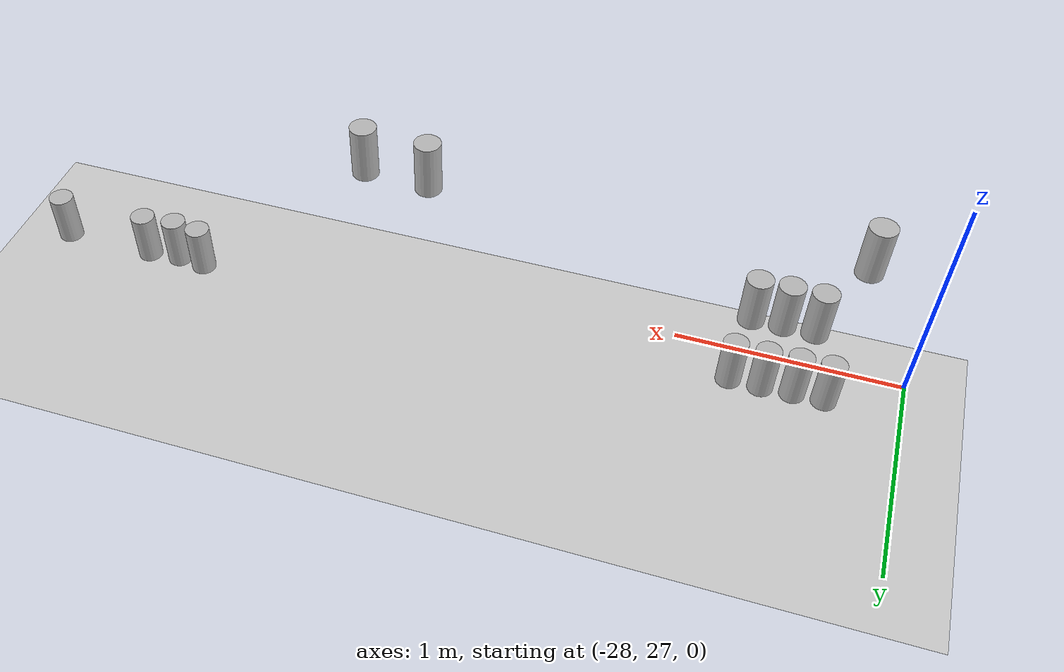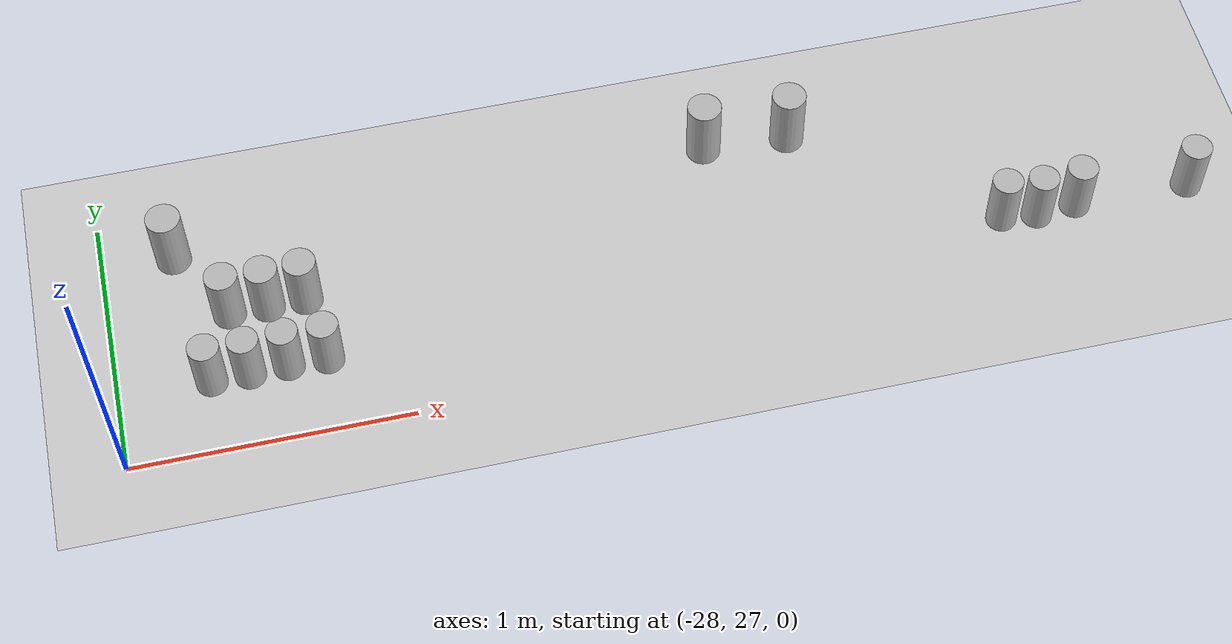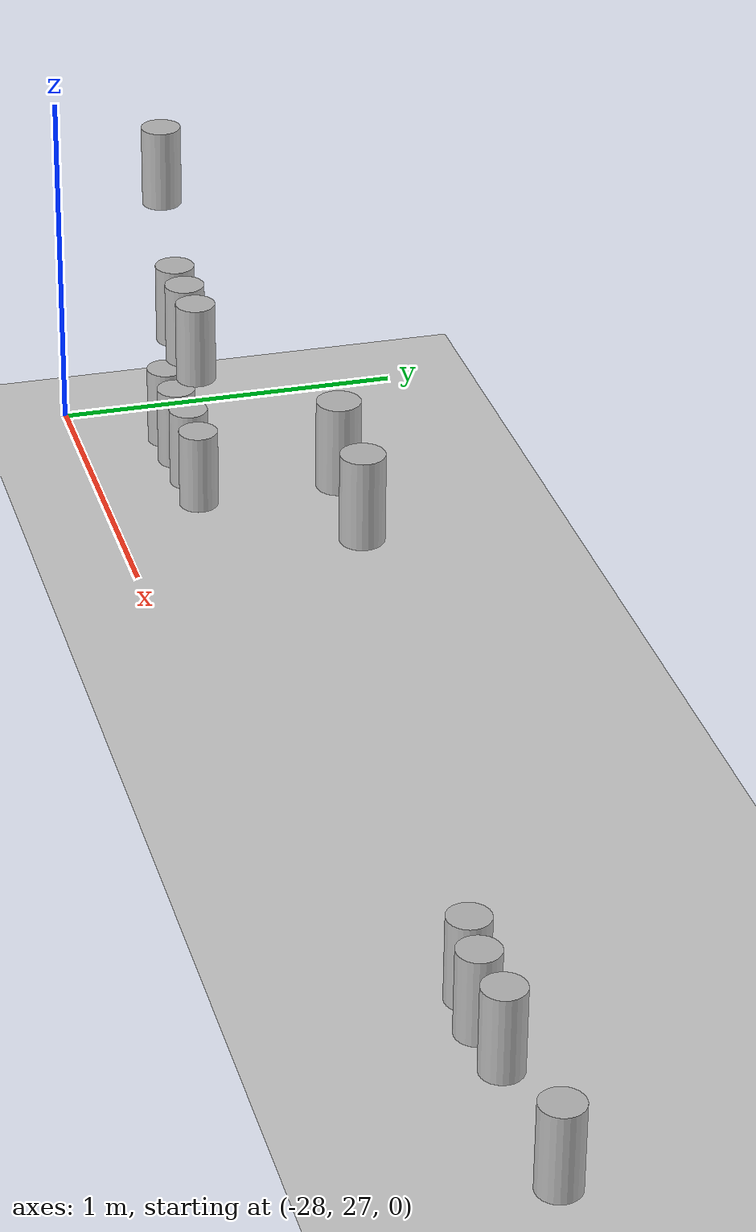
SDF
<sdf version="1.7">
 <world name="default">
  <model name="ground_plane">
   <static>1</static>
   <link name="link">
    <collision name="collision">
     <geometry><plane><normal>0 0 1</normal><size>100 100</size></plane></geometry>
     <surface>
      <contact><collide_bitmask>65535</collide_bitmask></contact>
      <friction><ode><mu>100</mu><mu2>50</mu2></ode></friction>
     </surface>
    </collision>
    <visual name="visual">
     <cast_shadows>0</cast_shadows>
     <geometry><plane><normal>0 0 1</normal><size>100 100</size></plane></geometry>
     <material>
      <script><uri>file://media/materials/scripts/gazebo.material</uri><name>Gazebo/Grey</name></script>
     </material>
    </visual>
   </link>
  </model>
  <model name="beer_clone_5">
   <link name="link">
    <pose>0 0 0.115 0 -0 0</pose>
    <inertial>
     <mass>0.39</mass>
     <inertia><ixx>0.00058</ixx><ixy>0</ixy><ixz>0</ixz><iyy>0.00058</iyy><iyz>0</iyz><izz>0.00019</izz></inertia>
    </inertial>
    <collision name="collision">
     <geometry><cylinder><radius>0.055</radius><length>0.23</length></cylinder></geometry>
    </collision>
    <visual name="visual">
     <geometry><cylinder><radius>0.055</radius><length>0.23</length></cylinder></geometry>
     <material>
      <script>
       <uri>model://beer/materials/scripts</uri>
       <uri>model://beer/materials/textures</uri>
       <name>Beer/Diffuse</name>
      </script>
     </material>
    </visual>
   </link>
   <pose>-27.2672 27.2387 0.060001 2e-05 1.4e-05 0.008863</pose>
  </model>
  <model name="beer_clone_6">
   <link name="link">
    <pose>0 0 0.115 0 -0 0</pose>
    <inertial>
     <mass>0.39</mass>
     <inertia><ixx>0.00058</ixx><ixy>0</ixy><ixz>0</ixz><iyy>0.00058</iyy><iyz>0</iyz><izz>0.00019</izz></inertia>
    </inertial>
    <collision name="collision">
     <geometry><cylinder><radius>0.055</radius><length>0.23</length></cylinder></geometry>
    </collision>
    <visual name="visual">
     <geometry><cylinder><radius>0.055</radius><length>0.23</length></cylinder></geometry>
     <material>
      <script>
       <uri>model://beer/materials/scripts</uri>
       <uri>model://beer/materials/textures</uri>
       <name>Beer/Diffuse</name>
      </script>
     </material>
    </visual>
   </link>
   <pose>-27.4041 27.242 0.05999 1e-06 -2.7e-05 0.004942</pose>
  </model>
  <model name="beer_clone_7">
   <link name="link">
    <pose>0 0 0.115 0 -0 0</pose>
    <inertial>
     <mass>0.39</mass>
     <inertia><ixx>0.00058</ixx><ixy>0</ixy><ixz>0</ixz><iyy>0.00058</iyy><iyz>0</iyz><izz>0.00019</izz></inertia>
    </inertial>
    <collision name="collision">
     <geometry><cylinder><radius>0.055</radius><length>0.23</length></cylinder></geometry>
    </collision>
    <visual name="visual">
     <geometry><cylinder><radius>0.055</radius><length>0.23</length></cylinder></geometry>
     <material>
      <script>
       <uri>model://beer/materials/scripts</uri>
       <uri>model://beer/materials/textures</uri>
       <name>Beer/Diffuse</name>
      </script>
     </material>
    </visual>
   </link>
   <pose>-27.5383 27.2373 0.059989 1e-06 -2.8e-05 0.018419</pose>
  </model>
  <model name="beer_clone_8">
   <link name="link">
    <pose>0 0 0.115 0 -0 0</pose>
    <inertial>
     <mass>0.39</mass>
     <inertia><ixx>0.00058</ixx><ixy>0</ixy><ixz>0</ixz><iyy>0.00058</iyy><iyz>0</iyz><izz>0.00019</izz></inertia>
    </inertial>
    <collision name="collision">
     <geometry><cylinder><radius>0.055</radius><length>0.23</length></cylinder></geometry>
    </collision>
    <visual name="visual">
     <geometry><cylinder><radius>0.055</radius><length>0.23</length></cylinder></geometry>
     <material>
      <script>
       <uri>model://beer/materials/scripts</uri>
       <uri>model://beer/materials/textures</uri>
       <name>Beer/Diffuse</name>
      </script>
     </material>
    </visual>
   </link>
   <pose>-27.6708 27.2372 0.05999 1e-06 -2.7e-05 0.005374</pose>
  </model>
  <model name="beer_clone_9_clone_6">
   <link name="link">
    <pose>0 0 0.115 0 -0 0</pose>
    <inertial>
     <mass>0.39</mass>
     <inertia><ixx>0.00058</ixx><ixy>0</ixy><ixz>0</ixz><iyy>0.00058</iyy><iyz>0</iyz><izz>0.00019</izz></inertia>
    </inertial>
    <collision name="collision">
     <geometry><cylinder><radius>0.055</radius><length>0.23</length></cylinder></geometry>
    </collision>
    <visual name="visual">
     <geometry><cylinder><radius>0.055</radius><length>0.23</length></cylinder></geometry>
     <material>
      <script>
       <uri>model://beer/materials/scripts</uri>
       <uri>model://beer/materials/textures</uri>
       <name>Beer/Diffuse</name>
      </script>
     </material>
    </visual>
   </link>
   <pose>-27.2993 27.2422 0.440001 1.9e-05 1.4e-05 0.00655</pose>
  </model>
  <model name="beer_clone_9_clone_7">
   <link name="link">
    <pose>0 0 0.115 0 -0 0</pose>
    <inertial>
     <mass>0.39</mass>
     <inertia><ixx>0.00058</ixx><ixy>0</ixy><ixz>0</ixz><iyy>0.00058</iyy><iyz>0</iyz><izz>0.00019</izz></inertia>
    </inertial>
    <collision name="collision">
     <geometry><cylinder><radius>0.055</radius><length>0.23</length></cylinder></geometry>
    </collision>
    <visual name="visual">
     <geometry><cylinder><radius>0.055</radius><length>0.23</length></cylinder></geometry>
     <material>
      <script>
       <uri>model://beer/materials/scripts</uri>
       <uri>model://beer/materials/textures</uri>
       <name>Beer/Diffuse</name>
      </script>
     </material>
    </visual>
   </link>
   <pose>-27.4252 27.2408 0.440002 1e-06 -2.7e-05 0.005083</pose>
  </model>
  <model name="beer_clone_9_clone_8">
   <link name="link">
    <pose>0 0 0.115 0 -0 0</pose>
    <inertial>
     <mass>0.39</mass>
     <inertia><ixx>0.00058</ixx><ixy>0</ixy><ixz>0</ixz><iyy>0.00058</iyy><iyz>0</iyz><izz>0.00019</izz></inertia>
    </inertial>
    <collision name="collision">
     <geometry><cylinder><radius>0.055</radius><length>0.23</length></cylinder></geometry>
    </collision>
    <visual name="visual">
     <geometry><cylinder><radius>0.055</radius><length>0.23</length></cylinder></geometry>
     <material>
      <script>
       <uri>model://beer/materials/scripts</uri>
       <uri>model://beer/materials/textures</uri>
       <name>Beer/Diffuse</name>
      </script>
     </material>
    </visual>
   </link>
   <pose>-27.5543 27.2424 0.43999 1e-06 -2.6e-05 0.009171</pose>
  </model>
  <model name="beer_clone_9_clone_9">
   <link name="link">
    <pose>0 0 0.115 0 -0 0</pose>
    <inertial>
     <mass>0.39</mass>
     <inertia><ixx>0.00058</ixx><ixy>0</ixy><ixz>0</ixz><iyy>0.00058</iyy><iyz>0</iyz><izz>0.00019</izz></inertia>
    </inertial>
    <collision name="collision">
     <geometry><cylinder><radius>0.055</radius><length>0.23</length></cylinder></geometry>
    </collision>
    <visual name="visual">
     <geometry><cylinder><radius>0.055</radius><length>0.23</length></cylinder></geometry>
     <material>
      <script>
       <uri>model://beer/materials/scripts</uri>
       <uri>model://beer/materials/textures</uri>
       <name>Beer/Diffuse</name>
      </script>
     </material>
    </visual>
   </link>
   <pose>-27.6787 27.2361 0.80999 -1e-06 2.6e-05 0.006818</pose>
  </model>
  <model name="beer_clone_7_clone">
   <link name="link">
    <pose>0 0 0.115 0 -0 0</pose>
    <inertial>
     <mass>0.39</mass>
     <inertia><ixx>0.00058</ixx><ixy>0</ixy><ixz>0</ixz><iyy>0.00058</iyy><iyz>0</iyz><izz>0.00019</izz></inertia>
    </inertial>
    <collision name="collision">
     <geometry><cylinder><radius>0.055</radius><length>0.23</length></cylinder></geometry>
    </collision>
    <visual name="visual">
     <geometry><cylinder><radius>0.055</radius><length>0.23</length></cylinder></geometry>
     <material>
      <script>
       <uri>model://beer/materials/scripts</uri>
       <uri>model://beer/materials/textures</uri>
       <name>Beer/Diffuse</name>
      </script>
     </material>
    </visual>
   </link>
   <pose>-24.8263 27.2962 0.060002 1e-06 -2.7e-05 0.017249</pose>
  </model>
  <model name="beer_clone_7_clone_0">
   <link name="link">
    <pose>0 0 0.115 0 -0 0</pose>
    <inertial>
     <mass>0.39</mass>
     <inertia><ixx>0.00058</ixx><ixy>0</ixy><ixz>0</ixz><iyy>0.00058</iyy><iyz>0</iyz><izz>0.00019</izz></inertia>
    </inertial>
    <collision name="collision">
     <geometry><cylinder><radius>0.055</radius><length>0.23</length></cylinder></geometry>
    </collision>
    <visual name="visual">
     <geometry><cylinder><radius>0.055</radius><length>0.23</length></cylinder></geometry>
     <material>
      <script>
       <uri>model://beer/materials/scripts</uri>
       <uri>model://beer/materials/textures</uri>
       <name>Beer/Diffuse</name>
      </script>
     </material>
    </visual>
   </link>
   <pose>-24.6983 27.281 0.060002 2.9e-05 2e-06 0.01695</pose>
  </model>
  <model name="beer_clone_7_clone_1">
   <link name="link">
    <pose>0 0 0.115 0 -0 0</pose>
    <inertial>
     <mass>0.39</mass>
     <inertia><ixx>0.00058</ixx><ixy>0</ixy><ixz>0</ixz><iyy>0.00058</iyy><iyz>0</iyz><izz>0.00019</izz></inertia>
    </inertial>
    <collision name="collision">
     <geometry><cylinder><radius>0.055</radius><length>0.23</length></cylinder></geometry>
    </collision>
    <visual name="visual">
     <geometry><cylinder><radius>0.055</radius><length>0.23</length></cylinder></geometry>
     <material>
      <script>
       <uri>model://beer/materials/scripts</uri>
       <uri>model://beer/materials/textures</uri>
       <name>Beer/Diffuse</name>
      </script>
     </material>
    </visual>
   </link>
   <pose>-24.5507 27.2943 0.060002 2.7e-05 8e-06 0.019655</pose>
  </model>
  <model name="beer_clone_7_clone_4">
   <link name="link">
    <pose>0 0 0.115 0 -0 0</pose>
    <inertial>
     <mass>0.39</mass>
     <inertia><ixx>0.00058</ixx><ixy>0</ixy><ixz>0</ixz><iyy>0.00058</iyy><iyz>0</iyz><izz>0.00019</izz></inertia>
    </inertial>
    <collision name="collision">
     <geometry><cylinder><radius>0.055</radius><length>0.23</length></cylinder></geometry>
    </collision>
    <visual name="visual">
     <geometry><cylinder><radius>0.055</radius><length>0.23</length></cylinder></geometry>
     <material>
      <script>
       <uri>model://beer/materials/scripts</uri>
       <uri>model://beer/materials/textures</uri>
       <name>Beer/Diffuse</name>
      </script>
     </material>
    </visual>
   </link>
   <pose>-24.1281 27.2911 0.059992 2.3e-05 1.5e-05 0.01691</pose>
  </model>
  <model name="beer_clone_9_clone_9_clone_6_clone_2">
   <link name="link">
    <pose>0 0 0.115 0 -0 0</pose>
    <inertial>
     <mass>0.39</mass>
     <inertia><ixx>0.00058</ixx><ixy>0</ixy><ixz>0</ixz><iyy>0.00058</iyy><iyz>0</iyz><izz>0.00019</izz></inertia>
    </inertial>
    <collision name="collision">
     <geometry><cylinder><radius>0.055</radius><length>0.23</length></cylinder></geometry>
    </collision>
    <visual name="visual">
     <geometry><cylinder><radius>0.055</radius><length>0.23</length></cylinder></geometry>
     <material>
      <script>
       <uri>model://beer/materials/scripts</uri>
       <uri>model://beer/materials/textures</uri>
       <name>Beer/Diffuse</name>
      </script>
     </material>
    </visual>
   </link>
   <pose>-25.9433 27.286 0.809992 2.7e-05 7e-06 0.008984</pose>
  </model>
  <model name="beer_clone_9_clone_9_clone_6_clone_4">
   <link name="link">
    <pose>0 0 0.115 0 -0 0</pose>
    <inertial>
     <mass>0.39</mass>
     <inertia><ixx>0.00058</ixx><ixy>0</ixy><ixz>0</ixz><iyy>0.00058</iyy><iyz>0</iyz><izz>0.00019</izz></inertia>
    </inertial>
    <collision name="collision">
     <geometry><cylinder><radius>0.055</radius><length>0.23</length></cylinder></geometry>
    </collision>
    <visual name="visual">
     <geometry><cylinder><radius>0.055</radius><length>0.23</length></cylinder></geometry>
     <material>
      <script>
       <uri>model://beer/materials/scripts</uri>
       <uri>model://beer/materials/textures</uri>
       <name>Beer/Diffuse</name>
      </script>
     </material>
    </visual>
   </link>
   <pose>-25.6677 27.2707 0.809992 2.6e-05 1.6e-05 0.005918</pose>
  </model>
 </world>
</sdf>
